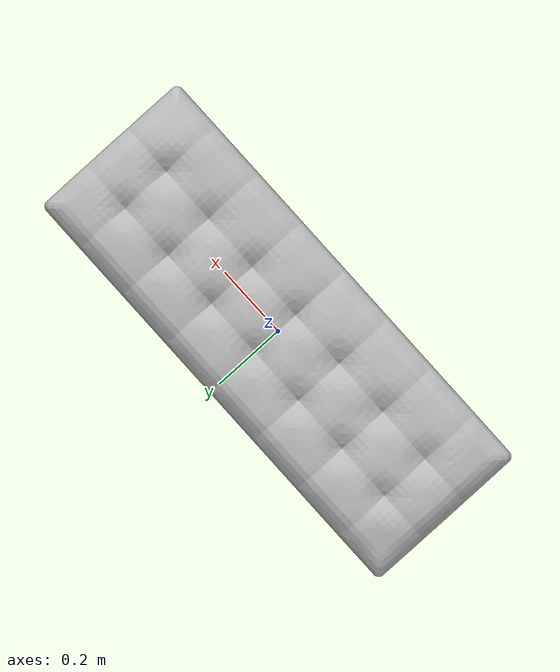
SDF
<sdf version="1.6">
	<model name="VanityBenches_Od731ef26e49f_lod0">
		<link name="main_link">
			<visual name="visual_RootNode">
				<geometry>
					<mesh>
						<uri>model://VanityBenches_Od731ef26e49f_lod0/meshes/visual_RootNode.dae</uri>
					</mesh>
				</geometry>
			</visual>
			<collision name="collision_RootNode_lod0_0">
				<geometry>
					<mesh>
						<uri>model://VanityBenches_Od731ef26e49f_lod0/meshes/collision_RootNode_lod0_0.dae</uri>
					</mesh>
				</geometry>
			</collision>
		</link>
	</model>
</sdf>
